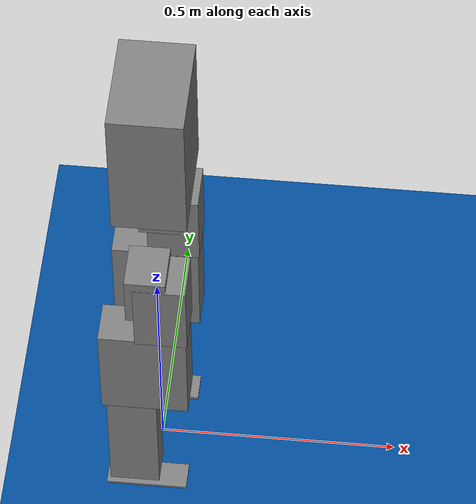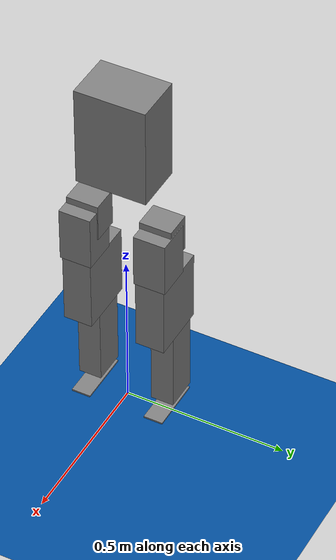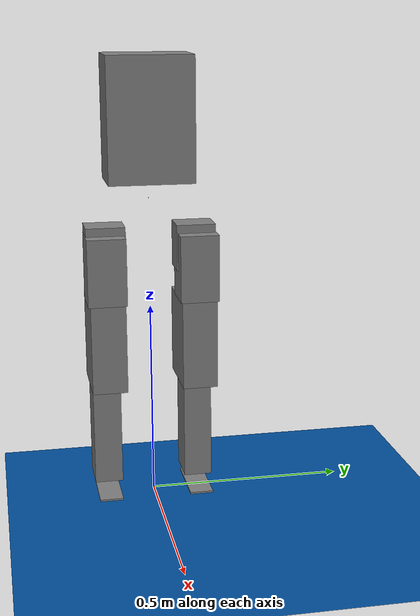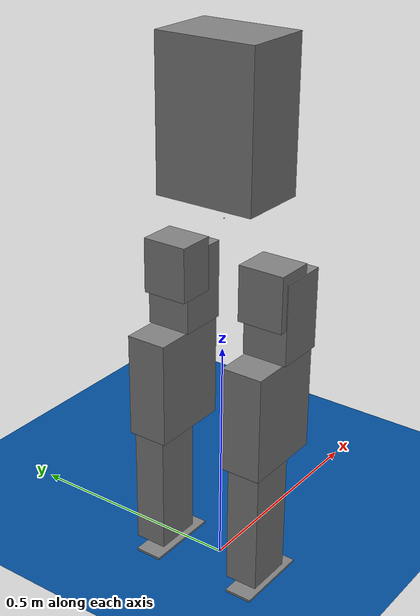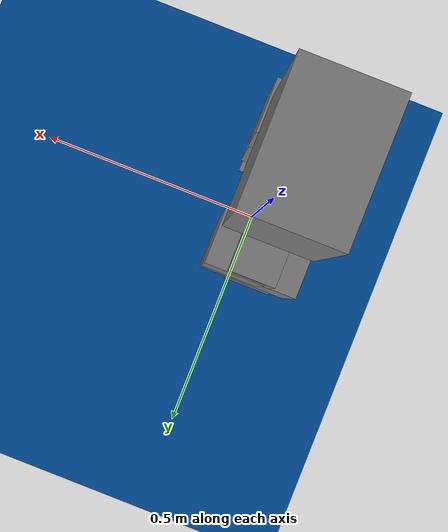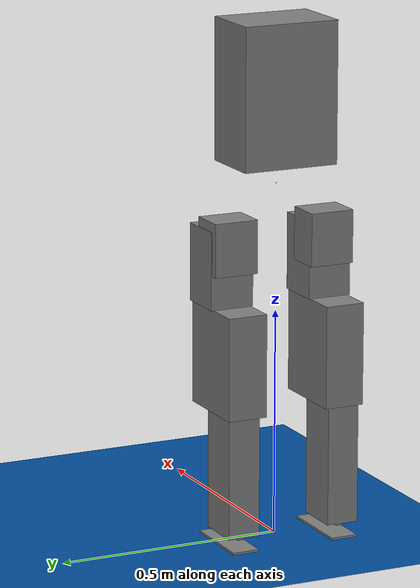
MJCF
<mujoco model="MuJoCo Model">
  <compiler angle="radian"/>

  <option gravity="0 0 -9.81" integrator="implicitfast">
    <flag multiccd="disable"/>
  </option>

  <worldbody>
    <geom name="ground_plane_0" size="5 5 5" type="plane" contype="2" conaffinity="2147483645" friction="2 0.005 0.0001" solref="0.02" rgba="0 0.3 0.6 1"/>
    <body name="pelvis" pos="0 0 0.78">
      <inertial pos="0 0 0" quat="1 0 -0.000399148 0" mass="3.814" diaginertia="0.010549 0.0093089 0.0079184"/>
      <joint name="root_free" type="free"/>
      <geom name="shape_1_1" size="0.001" contype="4" conaffinity="2147483643" friction="1 0.005 0.0001" solref="0.02"/>
      <body name="left_hip_pitch_link" pos="0 0.064452 -0.1027">
        <inertial pos="0 0 0" quat="0.954862 0.293964 0.0302556 0.030122" mass="1.35" diaginertia="0.00181517 0.00153422 0.00116212"/>
        <joint name="left_hip_pitch_joint" pos="0 0 0" axis="0 1 0" solreflimit="-10000 -100" limited="true" range="-2.5307 2.8798" actuatorfrclimited="true" actuatorfrcrange="-88 88"/>
        <geom name="shape_2_2" size="0.0412784 0.0494054 0.0585823" pos="-0.00103767 0.0494054 -0.0214614" type="box" contype="8" conaffinity="2147483639" friction="1 0.005 0.0001" solref="0.02"/>
        <body name="left_hip_roll_link" pos="0 0.052 -0.030465">
          <inertial pos="0 0 0" quat="0.977808 -1.97146e-05 0.205576 -0.0403793" mass="1.52" diaginertia="0.00254986 0.00241169 0.00148755"/>
          <joint name="left_hip_roll_joint" pos="0 0 0" axis="0.984744 0 0.17401" solreflimit="-10000 -100" limited="true" range="-0.5236 2.9671" actuatorfrclimited="true" actuatorfrcrange="-88 88"/>
          <geom name="shape_3_3" size="0.0532396 0.0489454 0.0853044" pos="0.0269208 -0.000171173 -0.0388197" type="box" contype="8" conaffinity="2147483639" friction="1 0.005 0.0001" solref="0.02"/>
          <body name="left_hip_yaw_link" pos="0.025001 0 -0.12412">
            <inertial pos="0 0 0" quat="0.600598 0.15832 0.223482 0.751181" mass="1.702" diaginertia="0.00776166 0.00717575 0.00160139"/>
            <joint name="left_hip_yaw_joint" pos="0 0 0" axis="0 0 1" solreflimit="-10000 -100" limited="true" range="-2.7576 2.7576" actuatorfrclimited="true" actuatorfrcrange="-88 88"/>
            <geom name="shape_4_4" size="0.089817 0.0443413 0.113115" pos="-0.0374323 -0.00104196 -0.113115" type="box" contype="16" conaffinity="2147483631" friction="1 0.005 0.0001" solref="0.02"/>
            <body name="left_knee_link" pos="-0.078273 0.0021489 -0.17734">
              <inertial pos="0 0 0" quat="0.923417 -0.0327698 0.0158246 0.382068" mass="1.932" diaginertia="0.0113804 0.0112778 0.00146458"/>
              <joint name="left_knee_joint" pos="0 0 0" axis="0 1 0" solreflimit="-10000 -100" limited="true" range="-0.087267 2.8798" actuatorfrclimited="true" actuatorfrcrange="-139 139"/>
              <geom name="shape_5_5" size="0.0519081 0.0358496 0.177561" pos="0.0120115 -3.68617e-05 -0.137512" type="box" contype="16" conaffinity="2147483631" friction="1 0.005 0.0001" solref="0.02"/>
              <body name="left_ankle_pitch_link" pos="0 -9.4445e-05 -0.30001">
                <inertial pos="0 0 0" mass="0.074" diaginertia="0.0006956 0.0012358 0.0006956"/>
                <joint name="left_ankle_pitch_joint" pos="0 0 0" axis="0 1 0" solreflimit="-10000 -100" limited="true" range="-0.87267 0.5236" actuatorfrclimited="true" actuatorfrcrange="-35 35"/>
                <geom name="shape_6_6" size="0.018 0.00650001 0.0187239" pos="-0.00649999 5.78223e-05 -0.00583397" type="box" contype="32" conaffinity="2147483615" friction="1 0.005 0.0001" solref="0.02"/>
                <body name="left_ankle_roll_link" pos="0 0 -0.017558">
                  <inertial pos="0 0 0" quat="-0.000481092 0.728482 -0.000618967 0.685065" mass="0.608" diaginertia="0.00167218 0.0016161 0.000217621"/>
                  <joint name="left_ankle_roll_joint" pos="0 0 0" axis="1 0 0" solreflimit="-10000 -100" limited="true" range="-0.2618 0.2618" actuatorfrclimited="true" actuatorfrcrange="-35 35"/>
                  <geom name="shape_7_7" size="0.085 0.03 0.006" pos="0.035 0 -0.03" type="box" contype="32" conaffinity="2147483615" friction="1 0.005 0.0001" solref="0.02"/>
                </body>
              </body>
            </body>
          </body>
        </body>
      </body>
      <body name="right_hip_pitch_link" pos="0 -0.064452 -0.1027">
        <inertial pos="0 0 0" quat="0.954862 -0.293964 0.0302556 -0.030122" mass="1.35" diaginertia="0.00181517 0.00153422 0.00116212"/>
        <joint name="right_hip_pitch_joint" pos="0 0 0" axis="0 1 0" solreflimit="-10000 -100" limited="true" range="-2.5307 2.8798" actuatorfrclimited="true" actuatorfrcrange="-88 88"/>
        <geom name="shape_8_8" size="0.0412784 0.0494054 0.0585819" pos="-0.00103767 -0.0494054 -0.0214618" type="box" contype="64" conaffinity="2147483583" friction="1 0.005 0.0001" solref="0.02"/>
        <body name="right_hip_roll_link" pos="0 -0.052 -0.030465">
          <inertial pos="0 0 0" quat="0.977808 1.97146e-05 0.205576 0.0403793" mass="1.52" diaginertia="0.00254986 0.00241169 0.00148755"/>
          <joint name="right_hip_roll_joint" pos="0 0 0" axis="0.984744 0 0.17401" solreflimit="-10000 -100" limited="true" range="-2.9671 0.5236" actuatorfrclimited="true" actuatorfrcrange="-88 88"/>
          <geom name="shape_9_9" size="0.0532396 0.0489454 0.0853044" pos="0.0269208 0.000171173 -0.0388197" type="box" contype="64" conaffinity="2147483583" friction="1 0.005 0.0001" solref="0.02"/>
          <body name="right_hip_yaw_link" pos="0.025001 0 -0.12412">
            <inertial pos="0 0 0" quat="0.751181 0.223482 0.15832 0.600598" mass="1.702" diaginertia="0.00776166 0.00717575 0.00160139"/>
            <joint name="right_hip_yaw_joint" pos="0 0 0" axis="0 0 1" solreflimit="-10000 -100" limited="true" range="-2.7576 2.7576" actuatorfrclimited="true" actuatorfrcrange="-88 88"/>
            <geom name="shape_10_10" size="0.089817 0.0443413 0.113115" pos="-0.0374323 0.00104196 -0.113115" type="box" contype="128" conaffinity="2147483519" friction="1 0.005 0.0001" solref="0.02"/>
            <body name="right_knee_link" pos="-0.078273 -0.0021489 -0.17734">
              <inertial pos="0 0 0" quat="0.923438 0.0345276 0.0116334 -0.382014" mass="1.932" diaginertia="0.011374 0.0112843 0.00146452"/>
              <joint name="right_knee_joint" pos="0 0 0" axis="0 1 0" solreflimit="-10000 -100" limited="true" range="-0.087267 2.8798" actuatorfrclimited="true" actuatorfrcrange="-139 139"/>
              <geom name="shape_11_11" size="0.0519081 0.035848 0.177561" pos="0.0120115 3.48222e-05 -0.137512" type="box" contype="128" conaffinity="2147483519" friction="1 0.005 0.0001" solref="0.02"/>
              <body name="right_ankle_pitch_link" pos="0 9.4445e-05 -0.30001">
                <inertial pos="0 0 0" mass="0.074" diaginertia="0.0006956 0.0012358 0.0006956"/>
                <joint name="right_ankle_pitch_joint" pos="0 0 0" axis="0 1 0" solreflimit="-10000 -100" limited="true" range="-0.87267 0.5236" actuatorfrclimited="true" actuatorfrcrange="-35 35"/>
                <geom name="shape_12_12" size="0.018 0.00650001 0.0187239" pos="-0.00649999 -5.78223e-05 -0.00583397" type="box" contype="256" conaffinity="2147483391" friction="1 0.005 0.0001" solref="0.02"/>
                <body name="right_ankle_roll_link" pos="0 0 -0.017558">
                  <inertial pos="0 0 0" quat="0.000481092 0.728482 0.000618967 0.685065" mass="0.608" diaginertia="0.00167218 0.0016161 0.000217621"/>
                  <joint name="right_ankle_roll_joint" pos="0 0 0" axis="1 0 0" solreflimit="-10000 -100" limited="true" range="-0.2618 0.2618" actuatorfrclimited="true" actuatorfrcrange="-35 35"/>
                  <geom name="shape_13_13" size="0.085 0.03 0.006" pos="0.035 0 -0.03" type="box" contype="256" conaffinity="2147483391" friction="1 0.005 0.0001" solref="0.02"/>
                </body>
              </body>
            </body>
          </body>
        </body>
      </body>
      <body name="torso_link" pos="-0.0039635 0 0.054">
        <inertial pos="0 0 0" quat="0.999683 0.00171655 0.0248299 -0.00373138" mass="9.844" diaginertia="0.065762 0.0535348 0.0307215"/>
        <joint name="waist_yaw_joint" pos="0 0 0" axis="0 0 1" solreflimit="-10000 -100" limited="true" range="-2.618 2.618" actuatorfrclimited="true" actuatorfrcrange="-88 88"/>
        <geom name="shape_14_14" size="0.0751349 0.107714 0.155151" pos="0.00849202 8.23289e-07 0.145212" type="box" contype="4" conaffinity="2147483643" friction="1 0.005 0.0001" solref="0.02"/>
      </body>
    </body>
  </worldbody>

  <contact>
    <exclude body1="pelvis" body2="left_hip_pitch_link"/>
    <exclude body1="pelvis" body2="right_hip_pitch_link"/>
    <exclude body1="pelvis" body2="torso_link"/>
    <exclude body1="left_hip_pitch_link" body2="left_hip_roll_link"/>
    <exclude body1="left_hip_roll_link" body2="left_hip_yaw_link"/>
    <exclude body1="left_hip_yaw_link" body2="left_knee_link"/>
    <exclude body1="left_knee_link" body2="left_ankle_pitch_link"/>
    <exclude body1="left_ankle_pitch_link" body2="left_ankle_roll_link"/>
    <exclude body1="right_hip_pitch_link" body2="right_hip_roll_link"/>
    <exclude body1="right_hip_roll_link" body2="right_hip_yaw_link"/>
    <exclude body1="right_hip_yaw_link" body2="right_knee_link"/>
    <exclude body1="right_knee_link" body2="right_ankle_pitch_link"/>
    <exclude body1="right_ankle_pitch_link" body2="right_ankle_roll_link"/>
  </contact>

  <actuator>
    <general name="left_hip_pitch_joint_pos" joint="left_hip_pitch_joint" biastype="affine" gainprm="400" biasprm="0 -400"/>
    <general name="left_hip_pitch_joint_vel" joint="left_hip_pitch_joint" biastype="affine" gainprm="60" biasprm="0 0 -60"/>
    <general name="left_hip_roll_joint_pos" joint="left_hip_roll_joint" biastype="affine" gainprm="400" biasprm="0 -400"/>
    <general name="left_hip_roll_joint_vel" joint="left_hip_roll_joint" biastype="affine" gainprm="60" biasprm="0 0 -60"/>
    <general name="left_hip_yaw_joint_pos" joint="left_hip_yaw_joint" biastype="affine" gainprm="400" biasprm="0 -400"/>
    <general name="left_hip_yaw_joint_vel" joint="left_hip_yaw_joint" biastype="affine" gainprm="60" biasprm="0 0 -60"/>
    <general name="left_knee_joint_pos" joint="left_knee_joint" biastype="affine" gainprm="400" biasprm="0 -400"/>
    <general name="left_knee_joint_vel" joint="left_knee_joint" biastype="affine" gainprm="60" biasprm="0 0 -60"/>
    <general name="left_ankle_pitch_joint_pos" joint="left_ankle_pitch_joint" biastype="affine" gainprm="400" biasprm="0 -400"/>
    <general name="left_ankle_pitch_joint_vel" joint="left_ankle_pitch_joint" biastype="affine" gainprm="60" biasprm="0 0 -60"/>
    <general name="left_ankle_roll_joint_pos" joint="left_ankle_roll_joint" biastype="affine" gainprm="400" biasprm="0 -400"/>
    <general name="left_ankle_roll_joint_vel" joint="left_ankle_roll_joint" biastype="affine" gainprm="60" biasprm="0 0 -60"/>
    <general name="right_hip_pitch_joint_pos" joint="right_hip_pitch_joint" biastype="affine" gainprm="400" biasprm="0 -400"/>
    <general name="right_hip_pitch_joint_vel" joint="right_hip_pitch_joint" biastype="affine" gainprm="60" biasprm="0 0 -60"/>
    <general name="right_hip_roll_joint_pos" joint="right_hip_roll_joint" biastype="affine" gainprm="400" biasprm="0 -400"/>
    <general name="right_hip_roll_joint_vel" joint="right_hip_roll_joint" biastype="affine" gainprm="60" biasprm="0 0 -60"/>
    <general name="right_hip_yaw_joint_pos" joint="right_hip_yaw_joint" biastype="affine" gainprm="400" biasprm="0 -400"/>
    <general name="right_hip_yaw_joint_vel" joint="right_hip_yaw_joint" biastype="affine" gainprm="60" biasprm="0 0 -60"/>
    <general name="right_knee_joint_pos" joint="right_knee_joint" biastype="affine" gainprm="400" biasprm="0 -400"/>
    <general name="right_knee_joint_vel" joint="right_knee_joint" biastype="affine" gainprm="60" biasprm="0 0 -60"/>
    <general name="right_ankle_pitch_joint_pos" joint="right_ankle_pitch_joint" biastype="affine" gainprm="400" biasprm="0 -400"/>
    <general name="right_ankle_pitch_joint_vel" joint="right_ankle_pitch_joint" biastype="affine" gainprm="60" biasprm="0 0 -60"/>
    <general name="right_ankle_roll_joint_pos" joint="right_ankle_roll_joint" biastype="affine" gainprm="400" biasprm="0 -400"/>
    <general name="right_ankle_roll_joint_vel" joint="right_ankle_roll_joint" biastype="affine" gainprm="60" biasprm="0 0 -60"/>
    <general name="waist_yaw_joint_pos" joint="waist_yaw_joint" biastype="affine" gainprm="400" biasprm="0 -400"/>
    <general name="waist_yaw_joint_vel" joint="waist_yaw_joint" biastype="affine" gainprm="60" biasprm="0 0 -60"/>
  </actuator>
</mujoco>
